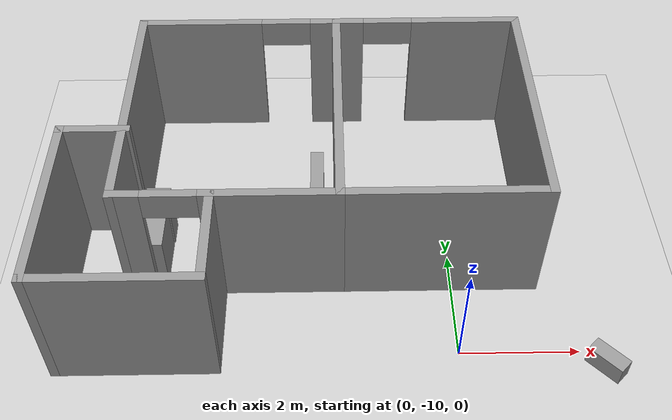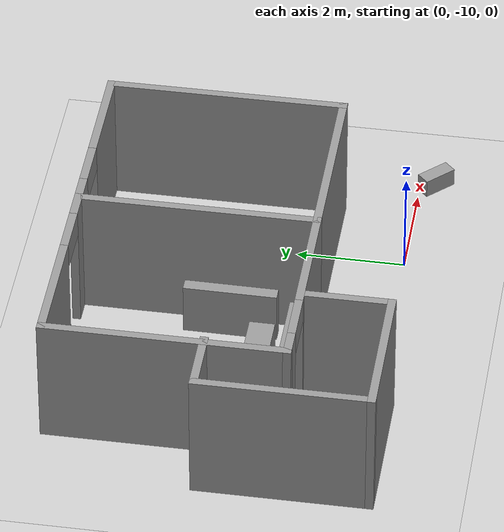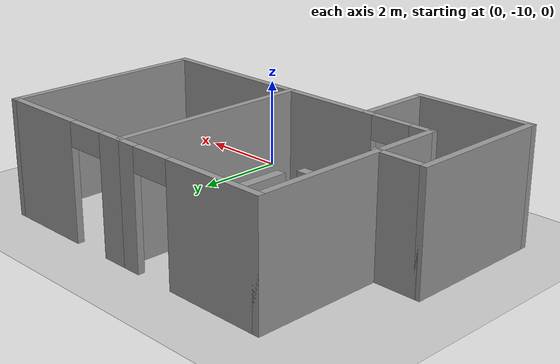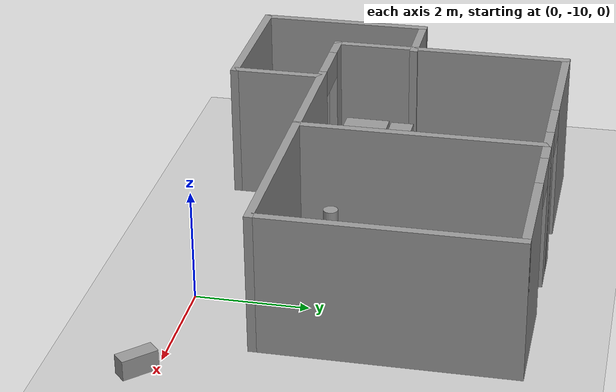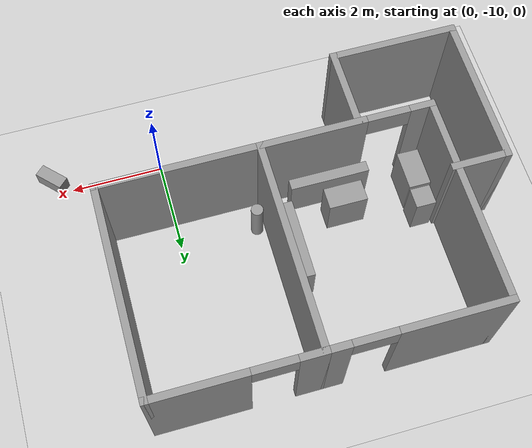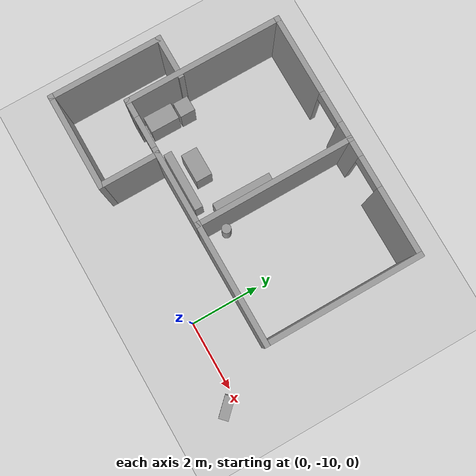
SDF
<sdf version="1.6">
 <world name="default">
  <model name="ground_plane">
   <static>1</static>
   <link name="link">
    <collision name="collision">
     <geometry><plane><normal>0 0 1</normal><size>100 100</size></plane></geometry>
     <surface><friction><ode><mu>100</mu><mu2>50</mu2></ode></friction></surface>
    </collision>
    <visual name="visual">
     <cast_shadows>0</cast_shadows>
     <geometry><plane><normal>0 0 1</normal><size>100 100</size></plane></geometry>
     <material>
      <script><uri>file://media/materials/scripts/gazebo.material</uri><name>Gazebo/Grey</name></script>
     </material>
    </visual>
   </link>
  </model>
  <model name="cma_quartos">
   <pose>-2.58169 -7.26456 0 0 -0 0</pose>
   <link name="Wall_0">
    <collision name="Wall_0_Collision">
     <geometry><box><size>4.5 0.15 2.5</size></box></geometry>
     <pose>0 0 1.25 0 -0 0</pose>
    </collision>
    <visual name="Wall_0_Visual">
     <pose>0 0 1.25 0 -0 0</pose>
     <geometry><box><size>4.5 0.15 2.5</size></box></geometry>
     <material>
      <script><uri>file://media/materials/scripts/gazebo.material</uri><name>Gazebo/Grey</name></script>
      <ambient>1 1 1 1</ambient>
     </material>
    </visual>
    <pose>0.645 0.81 0 0 0 -1.5708</pose>
   </link>
   <link name="Wall_1">
    <pose>-1.155 -1.365 0 0 -0 3.14159</pose>
    <visual name="Wall_1_Visual_0">
     <pose>-0.7225 0 1.25 0 -0 0</pose>
     <geometry><box><size>2.305 0.15 2.5</size></box></geometry>
     <material>
      <script><uri>file://media/materials/scripts/gazebo.material</uri><name>Gazebo/Grey</name></script>
      <ambient>1 1 1 1</ambient>
     </material>
    </visual>
    <collision name="Wall_1_Collision_0">
     <geometry><box><size>2.305 0.15 2.5</size></box></geometry>
     <pose>-0.7225 0 1.25 0 -0 0</pose>
    </collision>
    <visual name="Wall_1_Visual_1">
     <pose>1.6025 0 1.25 0 -0 0</pose>
     <geometry><box><size>0.545 0.15 2.5</size></box></geometry>
     <material>
      <script><uri>file://media/materials/scripts/gazebo.material</uri><name>Gazebo/Grey</name></script>
      <ambient>1 1 1 1</ambient>
     </material>
    </visual>
    <collision name="Wall_1_Collision_1">
     <geometry><box><size>0.545 0.15 2.5</size></box></geometry>
     <pose>1.6025 0 1.25 0 -0 0</pose>
    </collision>
    <visual name="Wall_1_Visual_2">
     <pose>0.88 0 2.25 0 -0 0</pose>
     <geometry><box><size>0.9 0.15 0.5</size></box></geometry>
     <material>
      <script><uri>file://media/materials/scripts/gazebo.material</uri><name>Gazebo/Grey</name></script>
      <ambient>1 1 1 1</ambient>
     </material>
    </visual>
    <collision name="Wall_1_Collision_2">
     <geometry><box><size>0.9 0.15 0.5</size></box></geometry>
     <pose>0.88 0 2.25 0 -0 0</pose>
    </collision>
   </link>
   <link name="Wall_10">
    <collision name="Wall_10_Collision">
     <geometry><box><size>1.75 0.15 2.5</size></box></geometry>
     <pose>0 0 1.25 0 -0 0</pose>
    </collision>
    <visual name="Wall_10_Visual">
     <pose>0 0 1.25 0 -0 0</pose>
     <geometry><box><size>1.75 0.15 2.5</size></box></geometry>
     <material>
      <script><uri>file://media/materials/scripts/gazebo.material</uri><name>Gazebo/Grey</name></script>
      <ambient>1 1 1 1</ambient>
     </material>
    </visual>
    <pose>-1.395 -2.185 0 0 0 -1.5708</pose>
   </link>
   <link name="Wall_11">
    <collision name="Wall_11_Collision">
     <geometry><box><size>2.75 0.15 2.5</size></box></geometry>
     <pose>0 0 1.25 0 -0 0</pose>
    </collision>
    <visual name="Wall_11_Visual">
     <pose>0 0 1.25 0 -0 0</pose>
     <geometry><box><size>2.75 0.15 2.5</size></box></geometry>
     <material>
      <script><uri>file://media/materials/scripts/gazebo.material</uri><name>Gazebo/Grey</name></script>
      <ambient>1 1 1 1</ambient>
     </material>
    </visual>
    <pose>-2.695 -2.985 0 0 -0 3.14159</pose>
   </link>
   <link name="Wall_12">
    <collision name="Wall_12_Collision">
     <geometry><box><size>3.25 0.15 2.5</size></box></geometry>
     <pose>0 0 1.25 0 -0 0</pose>
    </collision>
    <visual name="Wall_12_Visual">
     <pose>0 0 1.25 0 -0 0</pose>
     <geometry><box><size>3.25 0.15 2.5</size></box></geometry>
     <material>
      <script><uri>file://media/materials/scripts/gazebo.material</uri><name>Gazebo/Grey</name></script>
      <ambient>1 1 1 1</ambient>
     </material>
    </visual>
    <pose>-3.995 -1.435 0 0 -0 1.5708</pose>
   </link>
   <link name="Wall_13">
    <collision name="Wall_13_Collision">
     <geometry><box><size>1.25 0.15 2.5</size></box></geometry>
     <pose>0 0 1.25 0 -0 0</pose>
    </collision>
    <visual name="Wall_13_Visual">
     <pose>0 0 1.25 0 -0 0</pose>
     <geometry><box><size>1.25 0.15 2.5</size></box></geometry>
     <material>
      <script><uri>file://media/materials/scripts/gazebo.material</uri><name>Gazebo/Grey</name></script>
      <ambient>1 1 1 1</ambient>
     </material>
    </visual>
    <pose>-3.445 0.115 0 0 -0 0</pose>
   </link>
   <link name="Wall_2">
    <collision name="Wall_2_Collision">
     <geometry><box><size>4.5 0.15 2.5</size></box></geometry>
     <pose>0 0 1.25 0 -0 0</pose>
    </collision>
    <visual name="Wall_2_Visual">
     <pose>0 0 1.25 0 -0 0</pose>
     <geometry><box><size>4.5 0.15 2.5</size></box></geometry>
     <material>
      <script><uri>file://media/materials/scripts/gazebo.material</uri><name>Gazebo/Grey</name></script>
      <ambient>1 1 1 1</ambient>
     </material>
    </visual>
    <pose>-2.955 0.81 0 0 -0 1.5708</pose>
   </link>
   <link name="Wall_3">
    <pose>-1.155 2.985 0 0 -0 0</pose>
    <visual name="Wall_3_Visual_0">
     <pose>-0.7325 0 1.25 0 -0 0</pose>
     <geometry><box><size>2.285 0.15 2.5</size></box></geometry>
     <material>
      <script><uri>file://media/materials/scripts/gazebo.material</uri><name>Gazebo/Grey</name></script>
      <ambient>1 1 1 1</ambient>
     </material>
    </visual>
    <collision name="Wall_3_Collision_0">
     <geometry><box><size>2.285 0.15 2.5</size></box></geometry>
     <pose>-0.7325 0 1.25 0 -0 0</pose>
    </collision>
    <visual name="Wall_3_Visual_1">
     <pose>1.5925 0 1.25 0 -0 0</pose>
     <geometry><box><size>0.565 0.15 2.5</size></box></geometry>
     <material>
      <script><uri>file://media/materials/scripts/gazebo.material</uri><name>Gazebo/Grey</name></script>
      <ambient>1 1 1 1</ambient>
     </material>
    </visual>
    <collision name="Wall_3_Collision_1">
     <geometry><box><size>0.565 0.15 2.5</size></box></geometry>
     <pose>1.5925 0 1.25 0 -0 0</pose>
    </collision>
    <visual name="Wall_3_Visual_2">
     <pose>0.86 0 2.25 0 -0 0</pose>
     <geometry><box><size>0.9 0.15 0.5</size></box></geometry>
     <material>
      <script><uri>file://media/materials/scripts/gazebo.material</uri><name>Gazebo/Grey</name></script>
      <ambient>1 1 1 1</ambient>
     </material>
    </visual>
    <collision name="Wall_3_Collision_2">
     <geometry><box><size>0.9 0.15 0.5</size></box></geometry>
     <pose>0.86 0 2.25 0 -0 0</pose>
    </collision>
   </link>
   <link name="Wall_6">
    <pose>2.32 2.985 0 0 -0 0</pose>
    <visual name="Wall_6_Visual_0">
     <pose>-1.4575 0 1.25 0 -0 0</pose>
     <geometry><box><size>0.585 0.15 2.5</size></box></geometry>
     <material>
      <script><uri>file://media/materials/scripts/gazebo.material</uri><name>Gazebo/Grey</name></script>
      <ambient>1 1 1 1</ambient>
     </material>
    </visual>
    <collision name="Wall_6_Collision_0">
     <geometry><box><size>0.585 0.15 2.5</size></box></geometry>
     <pose>-1.4575 0 1.25 0 -0 0</pose>
    </collision>
    <visual name="Wall_6_Visual_1">
     <pose>0.7425 0 1.25 0 -0 0</pose>
     <geometry><box><size>2.015 0.15 2.5</size></box></geometry>
     <material>
      <script><uri>file://media/materials/scripts/gazebo.material</uri><name>Gazebo/Grey</name></script>
      <ambient>1 1 1 1</ambient>
     </material>
    </visual>
    <collision name="Wall_6_Collision_1">
     <geometry><box><size>2.015 0.15 2.5</size></box></geometry>
     <pose>0.7425 0 1.25 0 -0 0</pose>
    </collision>
    <visual name="Wall_6_Visual_2">
     <pose>-0.715 0 2.25 0 -0 0</pose>
     <geometry><box><size>0.9 0.15 0.5</size></box></geometry>
     <material>
      <script><uri>file://media/materials/scripts/gazebo.material</uri><name>Gazebo/Grey</name></script>
      <ambient>1 1 1 1</ambient>
     </material>
    </visual>
    <collision name="Wall_6_Collision_2">
     <geometry><box><size>0.9 0.15 0.5</size></box></geometry>
     <pose>-0.715 0 2.25 0 -0 0</pose>
    </collision>
   </link>
   <link name="Wall_7">
    <collision name="Wall_7_Collision">
     <geometry><box><size>4.5 0.15 2.5</size></box></geometry>
     <pose>0 0 1.25 0 -0 0</pose>
    </collision>
    <visual name="Wall_7_Visual">
     <pose>0 0 1.25 0 -0 0</pose>
     <geometry><box><size>4.5 0.15 2.5</size></box></geometry>
     <material>
      <script><uri>file://media/materials/scripts/gazebo.material</uri><name>Gazebo/Grey</name></script>
      <ambient>1 1 1 1</ambient>
     </material>
    </visual>
    <pose>3.995 0.81 0 0 0 -1.5708</pose>
   </link>
   <link name="Wall_8">
    <collision name="Wall_8_Collision">
     <geometry><box><size>3.5 0.15 2.5</size></box></geometry>
     <pose>0 0 1.25 0 -0 0</pose>
    </collision>
    <visual name="Wall_8_Visual">
     <pose>0 0 1.25 0 -0 0</pose>
     <geometry><box><size>3.5 0.15 2.5</size></box></geometry>
     <material>
      <script><uri>file://media/materials/scripts/gazebo.material</uri><name>Gazebo/Grey</name></script>
      <ambient>1 1 1 1</ambient>
     </material>
    </visual>
    <pose>2.32 -1.365 0 0 -0 3.14159</pose>
   </link>
   <static>1</static>
  </model>
  <model name="cma_armario_s_0">
   <link name="link_1">
    <pose>-2e-06 -3e-06 0 0 -0 0</pose>
    <inertial>
     <mass>0.390159</mass>
     <inertia>
      <ixx>0.039647</ixx>
      <ixy>0</ixy>
      <ixz>0</ixz>
      <iyy>0.0550708</iyy>
      <iyz>0</iyz>
      <izz>0.0296912</izz>
     </inertia>
    </inertial>
    <visual name="visual">
     <geometry><box><size>0.832942 0.468397 1</size></box></geometry>
     <material>
      <lighting>1</lighting>
      <script><uri>file://media/materials/scripts/gazebo.material</uri><name>Gazebo/Grey</name></script>
      <ambient>0.3 0.3 0.3 1</ambient>
      <diffuse>0.7 0.7 0.7 1</diffuse>
      <specular>0.01 0.01 0.01 1</specular>
      <emissive>0 0 0 1</emissive>
     </material>
    </visual>
    <collision name="collision">
     <geometry><box><size>0.832942 0.468397 1</size></box></geometry>
     <surface>
      <friction>
       <ode><mu>1</mu><mu2>1</mu2><fdir1>0 0 0</fdir1><slip1>0</slip1><slip2>0</slip2></ode>
       <torsional>
        <coefficient>1</coefficient>
        <patch_radius>0</patch_radius>
        <surface_radius>0</surface_radius>
        <use_patch_radius>1</use_patch_radius>
        <ode><slip>0</slip></ode>
       </torsional>
      </friction>
      <bounce><restitution_coefficient>0</restitution_coefficient><threshold>1e+06</threshold></bounce>
      <contact>
       <collide_without_contact>0</collide_without_contact>
       <collide_without_contact_bitmask>1</collide_without_contact_bitmask>
       <collide_bitmask>1</collide_bitmask>
       <ode>
        <soft_cfm>0</soft_cfm>
        <soft_erp>0.2</soft_erp>
        <kp>1e+13</kp>
        <kd>1</kd>
        <max_vel>0.01</max_vel>
        <min_depth>0</min_depth>
       </ode>
       <bullet>
        <split_impulse>1</split_impulse>
        <split_impulse_penetration_threshold>-0.01</split_impulse_penetration_threshold>
        <soft_cfm>0</soft_cfm>
        <soft_erp>0.2</soft_erp>
        <kp>1e+13</kp>
        <kd>1</kd>
       </bullet>
      </contact>
     </surface>
    </collision>
   </link>
   <static>0</static>
   <pose>-5.1684 -8.01556 0.5 0 0 -1.5755</pose>
  </model>
  <model name="cma_gaveteiro_pequeno_2">
   <link name="link_0">
    <pose>0.256174 1.25055 0.5 0 -0 0</pose>
    <inertial>
     <mass>0.187186</mass>
     <inertia>
      <ixx>0.01851</ixx>
      <ixy>0</ixy>
      <ixz>0</ixz>
      <iyy>0.0185276</iyy>
      <iyz>0</iyz>
      <izz>0.00583981</izz>
     </inertia>
    </inertial>
    <visual name="visual">
     <geometry><box><size>0.433317 0.432002 1</size></box></geometry>
     <material>
      <lighting>1</lighting>
      <script><uri>file://media/materials/scripts/gazebo.material</uri><name>Gazebo/Grey</name></script>
      <ambient>0.3 0.3 0.3 1</ambient>
      <diffuse>0.7 0.7 0.7 1</diffuse>
      <specular>0.01 0.01 0.01 1</specular>
      <emissive>0 0 0 1</emissive>
     </material>
    </visual>
    <collision name="collision">
     <geometry><box><size>0.433317 0.432002 1</size></box></geometry>
     <surface>
      <friction>
       <ode><mu>1</mu><mu2>1</mu2><fdir1>0 0 0</fdir1><slip1>0</slip1><slip2>0</slip2></ode>
       <torsional>
        <coefficient>1</coefficient>
        <patch_radius>0</patch_radius>
        <surface_radius>0</surface_radius>
        <use_patch_radius>1</use_patch_radius>
        <ode><slip>0</slip></ode>
       </torsional>
      </friction>
      <bounce><restitution_coefficient>0</restitution_coefficient><threshold>1e+06</threshold></bounce>
      <contact>
       <collide_without_contact>0</collide_without_contact>
       <collide_without_contact_bitmask>1</collide_without_contact_bitmask>
       <collide_bitmask>1</collide_bitmask>
       <ode>
        <soft_cfm>0</soft_cfm>
        <soft_erp>0.2</soft_erp>
        <kp>1e+13</kp>
        <kd>1</kd>
        <max_vel>0.01</max_vel>
        <min_depth>0</min_depth>
       </ode>
       <bullet>
        <split_impulse>1</split_impulse>
        <split_impulse_penetration_threshold>-0.01</split_impulse_penetration_threshold>
        <soft_cfm>0</soft_cfm>
        <soft_erp>0.2</soft_erp>
        <kp>1e+13</kp>
        <kd>1</kd>
       </bullet>
      </contact>
     </surface>
    </collision>
   </link>
   <static>0</static>
   <pose>-5.3917 -8.58551 3e-06 -2e-06 -1e-06 -9.2e-05</pose>
  </model>
  <model name="cma_armario_s_1">
   <link name="link_1">
    <pose>-2e-06 -3e-06 0 0 -0 0</pose>
    <inertial>
     <mass>0.390159</mass>
     <inertia>
      <ixx>0.039647</ixx>
      <ixy>0</ixy>
      <ixz>0</ixz>
      <iyy>0.0550708</iyy>
      <iyz>0</iyz>
      <izz>0.0296912</izz>
     </inertia>
    </inertial>
    <visual name="visual">
     <geometry><box><size>0.832942 0.468397 1</size></box></geometry>
     <material>
      <lighting>1</lighting>
      <script><uri>file://media/materials/scripts/gazebo.material</uri><name>Gazebo/Grey</name></script>
      <ambient>0.3 0.3 0.3 1</ambient>
      <diffuse>0.7 0.7 0.7 1</diffuse>
      <specular>0.01 0.01 0.01 1</specular>
      <emissive>0 0 0 1</emissive>
     </material>
    </visual>
    <collision name="collision">
     <geometry><box><size>0.832942 0.468397 1</size></box></geometry>
     <surface>
      <friction>
       <ode><mu>1</mu><mu2>1</mu2><fdir1>0 0 0</fdir1><slip1>0</slip1><slip2>0</slip2></ode>
       <torsional>
        <coefficient>1</coefficient>
        <patch_radius>0</patch_radius>
        <surface_radius>0</surface_radius>
        <use_patch_radius>1</use_patch_radius>
        <ode><slip>0</slip></ode>
       </torsional>
      </friction>
      <bounce><restitution_coefficient>0</restitution_coefficient><threshold>1e+06</threshold></bounce>
      <contact>
       <collide_without_contact>0</collide_without_contact>
       <collide_without_contact_bitmask>1</collide_without_contact_bitmask>
       <collide_bitmask>1</collide_bitmask>
       <ode>
        <soft_cfm>0</soft_cfm>
        <soft_erp>0.2</soft_erp>
        <kp>1e+13</kp>
        <kd>1</kd>
        <max_vel>0.01</max_vel>
        <min_depth>0</min_depth>
       </ode>
       <bullet>
        <split_impulse>1</split_impulse>
        <split_impulse_penetration_threshold>-0.01</split_impulse_penetration_threshold>
        <soft_cfm>0</soft_cfm>
        <soft_erp>0.2</soft_erp>
        <kp>1e+13</kp>
        <kd>1</kd>
       </bullet>
      </contact>
     </surface>
    </collision>
   </link>
   <static>0</static>
   <pose>-3.5795 -7.82371 0.499999 -4e-06 -0 -0.000457</pose>
  </model>
  <model name="cma_armario_1">
   <link name="link_0">
    <pose>1.32157 0.885178 0.5 0 -0 0</pose>
    <inertial>
     <mass>0.402376</mass>
     <inertia>
      <ixx>0.0353686</ixx>
      <ixy>0</ixy>
      <ixz>0</ixz>
      <iyy>0.132616</iyy>
      <iyz>0</iyz>
      <izz>0.100922</izz>
     </inertia>
    </inertial>
    <visual name="visual">
     <geometry><box><size>1.71877 0.234069 1</size></box></geometry>
     <material>
      <lighting>1</lighting>
      <script><uri>file://media/materials/scripts/gazebo.material</uri><name>Gazebo/Grey</name></script>
      <ambient>0.3 0.3 0.3 1</ambient>
      <diffuse>0.7 0.7 0.7 1</diffuse>
      <specular>0.01 0.01 0.01 1</specular>
      <emissive>0 0 0 1</emissive>
     </material>
    </visual>
    <collision name="collision">
     <geometry><box><size>1.71877 0.234069 1</size></box></geometry>
     <surface>
      <friction>
       <ode><mu>1</mu><mu2>1</mu2><fdir1>0 0 0</fdir1><slip1>0</slip1><slip2>0</slip2></ode>
       <torsional>
        <coefficient>1</coefficient>
        <patch_radius>0</patch_radius>
        <surface_radius>0</surface_radius>
        <use_patch_radius>1</use_patch_radius>
        <ode><slip>0</slip></ode>
       </torsional>
      </friction>
      <bounce><restitution_coefficient>0</restitution_coefficient><threshold>1e+06</threshold></bounce>
      <contact>
       <collide_without_contact>0</collide_without_contact>
       <collide_without_contact_bitmask>1</collide_without_contact_bitmask>
       <collide_bitmask>1</collide_bitmask>
       <ode>
        <soft_cfm>0</soft_cfm>
        <soft_erp>0.2</soft_erp>
        <kp>1e+13</kp>
        <kd>1</kd>
        <max_vel>0.01</max_vel>
        <min_depth>0</min_depth>
       </ode>
       <bullet>
        <split_impulse>1</split_impulse>
        <split_impulse_penetration_threshold>-0.01</split_impulse_penetration_threshold>
        <soft_cfm>0</soft_cfm>
        <soft_erp>0.2</soft_erp>
        <kp>1e+13</kp>
        <kd>1</kd>
       </bullet>
      </contact>
     </surface>
    </collision>
   </link>
   <static>0</static>
   <pose>-4.70125 -9.22649 3e-06 -0 6e-06 -0.002385</pose>
  </model>
  <model name="cma_armario_2_clone">
   <link name="link_0">
    <pose>1.32157 0.885178 0.5 0 -0 0</pose>
    <inertial>
     <mass>0.402376</mass>
     <inertia>
      <ixx>0.0353686</ixx>
      <ixy>0</ixy>
      <ixz>0</ixz>
      <iyy>0.132616</iyy>
      <iyz>0</iyz>
      <izz>0.100922</izz>
     </inertia>
    </inertial>
    <visual name="visual">
     <geometry><box><size>1.71877 0.234069 1</size></box></geometry>
     <material>
      <lighting>1</lighting>
      <script><uri>file://media/materials/scripts/gazebo.material</uri><name>Gazebo/Grey</name></script>
      <ambient>0.3 0.3 0.3 1</ambient>
      <diffuse>0.7 0.7 0.7 1</diffuse>
      <specular>0.01 0.01 0.01 1</specular>
      <emissive>0 0 0 1</emissive>
     </material>
    </visual>
    <collision name="collision">
     <geometry><box><size>1.71877 0.234069 1</size></box></geometry>
     <surface>
      <friction>
       <ode><mu>1</mu><mu2>1</mu2><fdir1>0 0 0</fdir1><slip1>0</slip1><slip2>0</slip2></ode>
       <torsional>
        <coefficient>1</coefficient>
        <patch_radius>0</patch_radius>
        <surface_radius>0</surface_radius>
        <use_patch_radius>1</use_patch_radius>
        <ode><slip>0</slip></ode>
       </torsional>
      </friction>
      <bounce><restitution_coefficient>0</restitution_coefficient><threshold>1e+06</threshold></bounce>
      <contact>
       <collide_without_contact>0</collide_without_contact>
       <collide_without_contact_bitmask>1</collide_without_contact_bitmask>
       <collide_bitmask>1</collide_bitmask>
       <ode>
        <soft_cfm>0</soft_cfm>
        <soft_erp>0.2</soft_erp>
        <kp>1e+13</kp>
        <kd>1</kd>
        <max_vel>0.01</max_vel>
        <min_depth>0</min_depth>
       </ode>
       <bullet>
        <split_impulse>1</split_impulse>
        <split_impulse_penetration_threshold>-0.01</split_impulse_penetration_threshold>
        <soft_cfm>0</soft_cfm>
        <soft_erp>0.2</soft_erp>
        <kp>1e+13</kp>
        <kd>1</kd>
       </bullet>
      </contact>
     </surface>
    </collision>
   </link>
   <static>0</static>
   <pose>-1.44883 -8.44621 -1e-06 2e-06 -0 1.56274</pose>
  </model>
  <model name="cma_lixo_1">
   <link name="link_1">
    <pose>0.882962 1.81586 0.5 0 -0 0</pose>
    <inertial>
     <mass>0.0687644</mass>
     <inertia>
      <ixx>0.00602588</ixx>
      <ixy>0</ixy>
      <ixz>0</ixz>
      <iyy>0.00602588</iyy>
      <iyz>0</iyz>
      <izz>0.000591068</izz>
     </inertia>
    </inertial>
    <visual name="visual">
     <geometry><cylinder><radius>0.131112</radius><length>1</length></cylinder></geometry>
     <material>
      <lighting>1</lighting>
      <script><uri>file://media/materials/scripts/gazebo.material</uri><name>Gazebo/Grey</name></script>
      <ambient>0.3 0.3 0.3 1</ambient>
      <diffuse>0.7 0.7 0.7 1</diffuse>
      <specular>0.01 0.01 0.01 1</specular>
      <emissive>0 0 0 1</emissive>
     </material>
    </visual>
    <collision name="collision">
     <geometry><cylinder><radius>0.131112</radius><length>1</length></cylinder></geometry>
     <surface>
      <friction>
       <ode><mu>1</mu><mu2>1</mu2><fdir1>0 0 0</fdir1><slip1>0</slip1><slip2>0</slip2></ode>
       <torsional>
        <coefficient>1</coefficient>
        <patch_radius>0</patch_radius>
        <surface_radius>0</surface_radius>
        <use_patch_radius>1</use_patch_radius>
        <ode><slip>0</slip></ode>
       </torsional>
      </friction>
      <bounce><restitution_coefficient>0</restitution_coefficient><threshold>1e+06</threshold></bounce>
      <contact>
       <collide_without_contact>0</collide_without_contact>
       <collide_without_contact_bitmask>1</collide_without_contact_bitmask>
       <collide_bitmask>1</collide_bitmask>
       <ode>
        <soft_cfm>0</soft_cfm>
        <soft_erp>0.2</soft_erp>
        <kp>1e+13</kp>
        <kd>1</kd>
        <max_vel>0.01</max_vel>
        <min_depth>0</min_depth>
       </ode>
       <bullet>
        <split_impulse>1</split_impulse>
        <split_impulse_penetration_threshold>-0.01</split_impulse_penetration_threshold>
        <soft_cfm>0</soft_cfm>
        <soft_erp>0.2</soft_erp>
        <kp>1e+13</kp>
        <kd>1</kd>
       </bullet>
      </contact>
     </surface>
    </collision>
   </link>
   <static>0</static>
   <pose>-2.57103 -9.7975 -1e-06 0 -0 0</pose>
  </model>
  <model name="cma_barra_70cmD">
   <link name="link_2">
    <pose>3.79375 1.34046 0.5 0 0 -0.803534</pose>
    <inertial>
     <mass>0.0631368</mass>
     <inertia>
      <ixx>0.00106542</ixx>
      <ixy>0</ixy>
      <ixz>0</ixz>
      <iyy>0.00284727</iyy>
      <iyz>0</iyz>
      <izz>0.0025815</izz>
     </inertia>
    </inertial>
    <visual name="visual">
     <geometry><box><size>0.643938 0.275728 0.355737</size></box></geometry>
     <material>
      <lighting>1</lighting>
      <script><uri>file://media/materials/scripts/gazebo.material</uri><name>Gazebo/Grey</name></script>
      <ambient>0.3 0.3 0.3 1</ambient>
      <diffuse>0.7 0.7 0.7 1</diffuse>
      <specular>0.01 0.01 0.01 1</specular>
      <emissive>0 0 0 1</emissive>
     </material>
    </visual>
    <collision name="collision">
     <geometry><box><size>0.643938 0.275728 0.355737</size></box></geometry>
     <surface>
      <friction>
       <ode><mu>1</mu><mu2>1</mu2><fdir1>0 0 0</fdir1><slip1>0</slip1><slip2>0</slip2></ode>
       <torsional>
        <coefficient>1</coefficient>
        <patch_radius>0</patch_radius>
        <surface_radius>0</surface_radius>
        <use_patch_radius>1</use_patch_radius>
        <ode><slip>0</slip></ode>
       </torsional>
      </friction>
      <bounce><restitution_coefficient>0</restitution_coefficient><threshold>1e+06</threshold></bounce>
      <contact>
       <collide_without_contact>0</collide_without_contact>
       <collide_without_contact_bitmask>1</collide_without_contact_bitmask>
       <collide_bitmask>1</collide_bitmask>
       <ode>
        <soft_cfm>0</soft_cfm>
        <soft_erp>0.2</soft_erp>
        <kp>1e+13</kp>
        <kd>1</kd>
        <max_vel>0.01</max_vel>
        <min_depth>0</min_depth>
       </ode>
       <bullet>
        <split_impulse>1</split_impulse>
        <split_impulse_penetration_threshold>-0.01</split_impulse_penetration_threshold>
        <soft_cfm>0</soft_cfm>
        <soft_erp>0.2</soft_erp>
        <kp>1e+13</kp>
        <kd>1</kd>
       </bullet>
      </contact>
     </surface>
    </collision>
   </link>
   <static>0</static>
   <pose>-1.41316 -11.6477 -0.322162 -1.1e-05 -1.1e-05 0.003984</pose>
  </model>
 </world>
</sdf>
